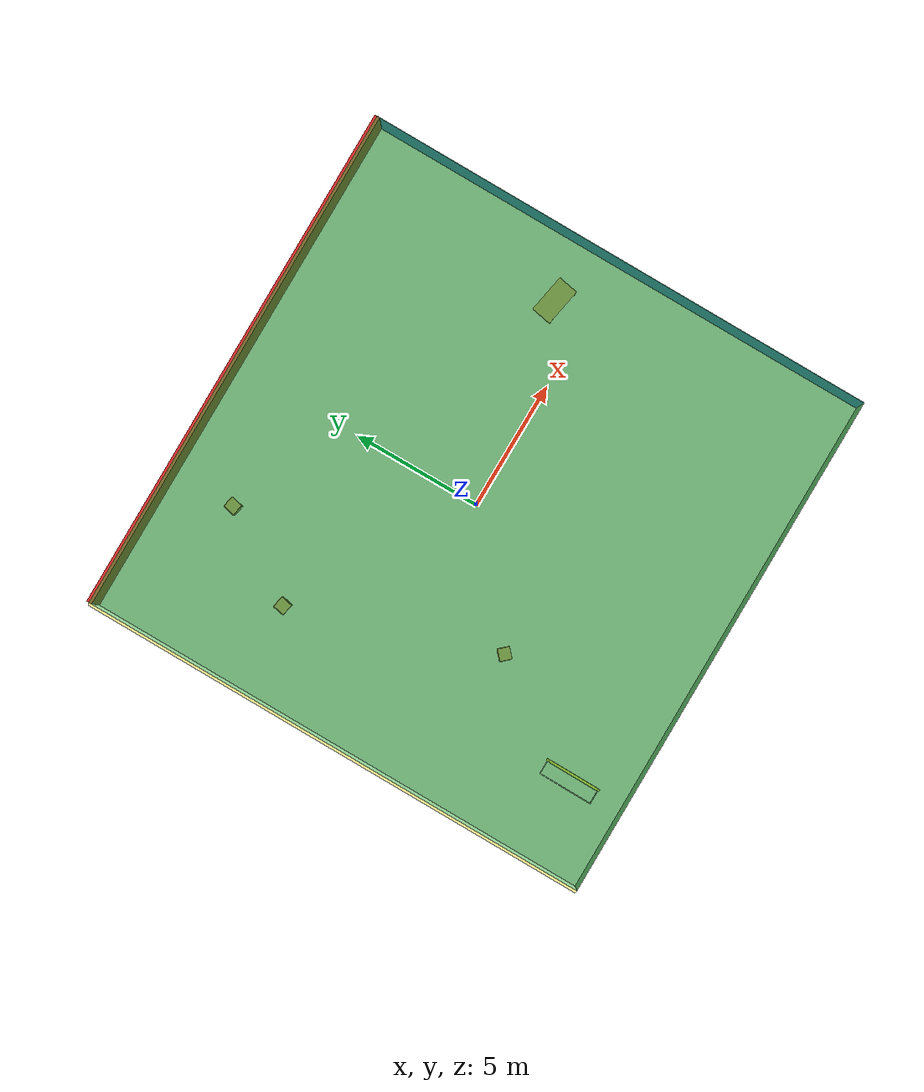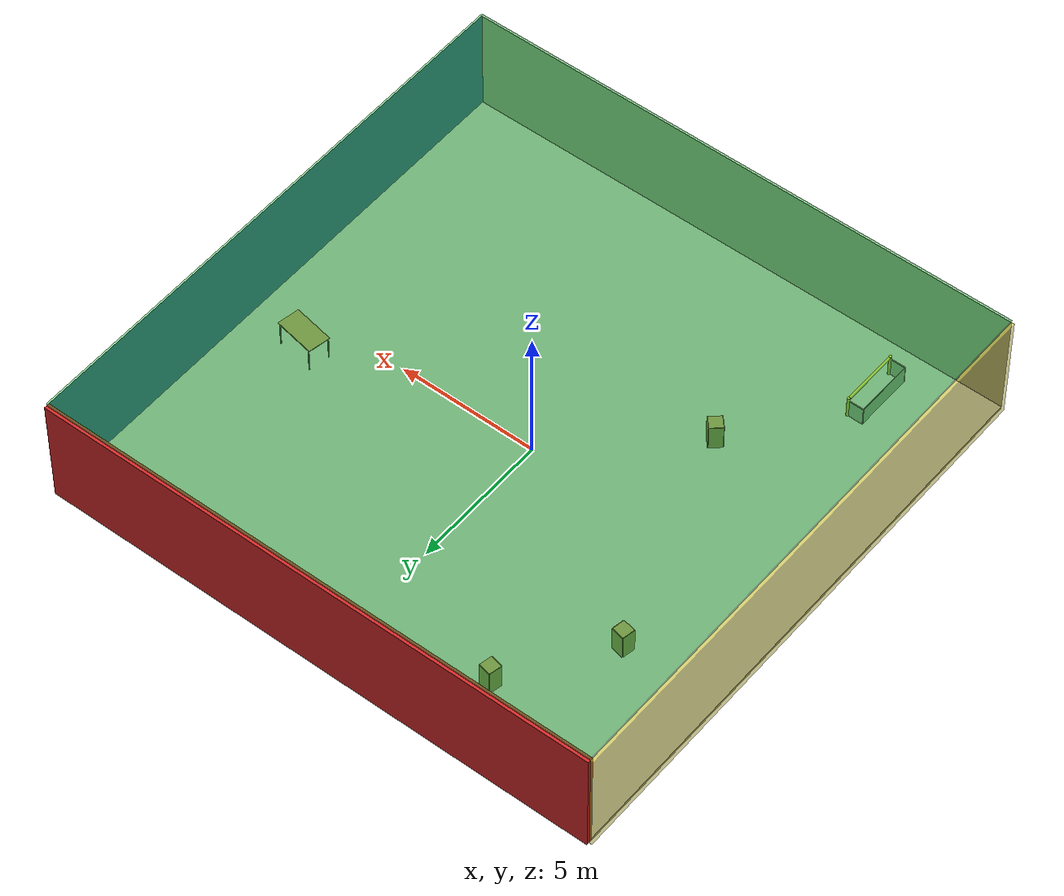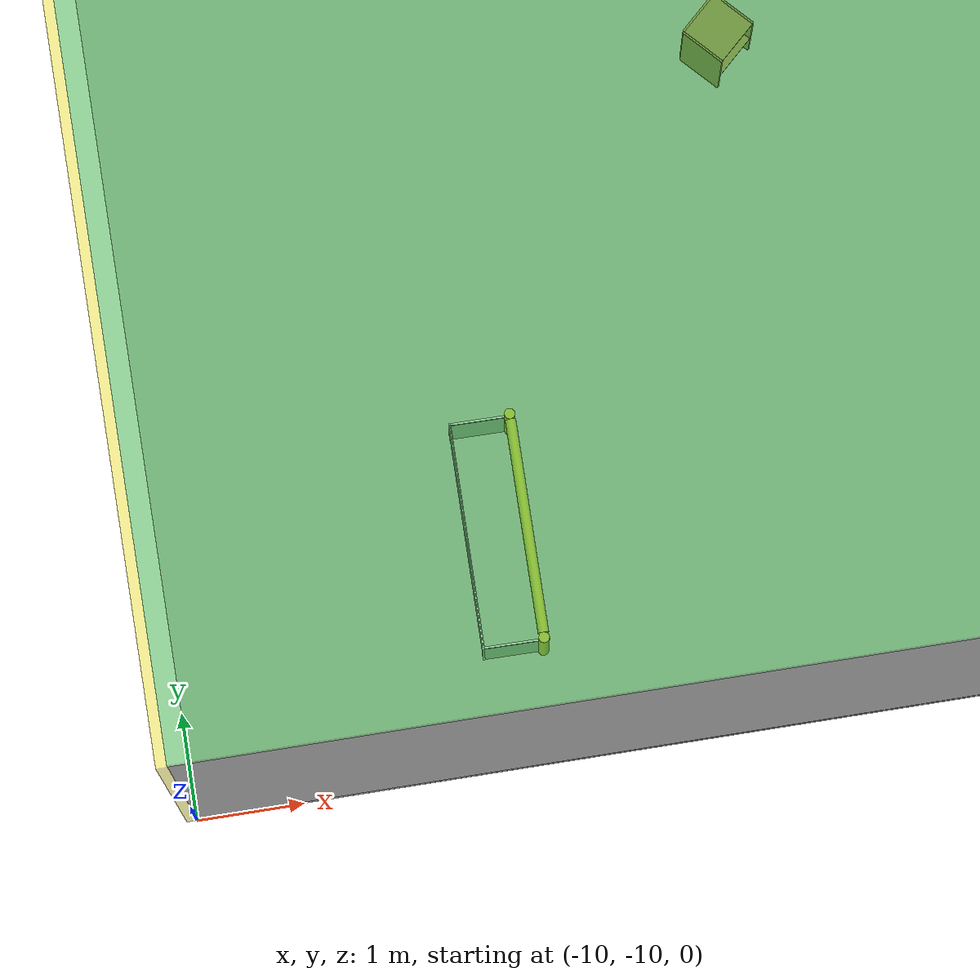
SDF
<sdf version="1.4">
 <world name="default">
  <physics type="ode">
   <max_step_size>0.001</max_step_size>
   <real_time_factor>1</real_time_factor>
   <real_time_update_rate>1000</real_time_update_rate>
   <gravity>0 0 -9.8</gravity>
  </physics>
  <scene><ambient>0.4 0.4 0.4 1</ambient><background>0.7 0.7 0.7 1</background><shadows>1</shadows></scene>
  <model name="Surrounding">
   <static>1</static>
   <link name="Ceiling">
    <collision name="Ceiling_Collision"><geometry><box><size>20 20 0.1</size></box></geometry></collision>
    <visual name="Ceiling_Visual">
     <geometry><box><size>20 20 0.1</size></box></geometry>
     <material>
      <script><uri>file://media/materials/scripts/gazebo.material</uri><name>Gazebo/GreenTransparent</name></script>
     </material>
    </visual>
    <pose>0 0 4.05 0 0 0</pose>
   </link>
   <link name="Wall_South">
    <collision name="Wall_South_Collision">
     <geometry><box><size>20 0 4</size></box></geometry>
     <pose>0 0 2 0 -0 0</pose>
    </collision>
    <visual name="Wall_South_Visual">
     <pose>0 0 2 0 -0 0</pose>
     <geometry><box><size>20 0 4</size></box></geometry>
     <material>
      <script><uri>file://media/materials/scripts/gazebo.material</uri><name>Gazebo/LightOff</name></script>
     </material>
    </visual>
    <velocity_decay><linear>0</linear><angular>0</angular></velocity_decay>
    <pose>0 -10 0 0 -0 0</pose>
   </link>
   <link name="Wall_East">
    <collision name="Wall_21_Collision">
     <geometry><box><size>20 0 4</size></box></geometry>
     <pose>0 0 2 0 -0 0</pose>
    </collision>
    <visual name="Wall_21_Visual">
     <pose>0 0 2 0 -0 0</pose>
     <geometry><box><size>20 0 4</size></box></geometry>
     <material>
      <script><uri>file://media/materials/scripts/gazebo.material</uri><name>Gazebo/BlueGlow</name></script>
     </material>
    </visual>
    <velocity_decay><linear>0</linear><angular>0</angular></velocity_decay>
    <pose>10 0 0 0 -0 1.5708</pose>
   </link>
   <link name="Wall_North">
    <collision name="Wall_22_Collision">
     <geometry><box><size>20 0.2 4</size></box></geometry>
     <pose>0 0 2 0 -0 0</pose>
    </collision>
    <visual name="Wall_22_Visual">
     <pose>0 0 2 0 -0 0</pose>
     <geometry><box><size>20 0.2 4</size></box></geometry>
     <material>
      <script><uri>file://media/materials/scripts/gazebo.material</uri><name>Gazebo/RedGlow</name></script>
     </material>
    </visual>
    <velocity_decay><linear>0</linear><angular>0</angular></velocity_decay>
    <pose>0 10 0 0 -0 0</pose>
   </link>
   <link name="Wall_West">
    <collision name="Wall_23_Collision">
     <geometry><box><size>20 0.2 4</size></box></geometry>
     <pose>0 0 2 0 -0 0</pose>
    </collision>
    <visual name="Wall_23_Visual">
     <pose>0 0 2 0 -0 0</pose>
     <geometry><box><size>20 0.2 4</size></box></geometry>
     <material>
      <script>
       <uri>file://media/materials/scripts/gazebo.material</uri>
       <name>Gazebo/YellowTransparent</name>
      </script>
     </material>
    </visual>
    <velocity_decay><linear>0</linear><angular>0</angular></velocity_decay>
    <pose>-10 0 0 0 0 -1.5708</pose>
   </link>
   <link name="Ground_link">
    <collision name="collision">
     <pose>0 0 .05 0 -0 0</pose>
     <geometry><box><size>20 20 0.1</size></box></geometry>
    </collision>
    <visual name="visual">
     <pose>0 0 .05 0 -0 0</pose>
     <geometry><box><size>20 20 0.1</size></box></geometry>
     <material>
      <script><uri>file://media/materials/scripts/gazebo.material</uri><name>Gazebo/JointAnchor</name></script>
     </material>
    </visual>
   </link>
   <static>1</static>
  </model>
  <spherical_coordinates>
   <surface_model>EARTH_WGS84</surface_model>
   <latitude_deg>0</latitude_deg>
   <longitude_deg>0</longitude_deg>
   <elevation>0</elevation>
   <heading_deg>0</heading_deg>
  </spherical_coordinates>
  <light name="lightball_0" type="diffuse">
   <diffuse>0.8 0.8 0.8 1</diffuse>
   <specular>0.2 0.2 0.2 1</specular>
   <attenuation>
    <range>100</range>
    <constant>0.7</constant>
    <linear>0.01</linear>
    <quadratic>0.001</quadratic>
   </attenuation>
   <direction>-0.5 0.1 -0.9</direction>
   <pose>5.17617791095 -6.93619181939 0.793651196974 0 0 0</pose>
  </light>
  <light name="lightball_1" type="diffuse">
   <diffuse>0.8 0.8 0.8 1</diffuse>
   <specular>0.2 0.2 0.2 1</specular>
   <attenuation>
    <range>100</range>
    <constant>0.7</constant>
    <linear>0.01</linear>
    <quadratic>0.001</quadratic>
   </attenuation>
   <direction>-0.5 0.1 -0.9</direction>
   <pose>-4.45179036248 2.62113779477 0.774247326502 0 0 0</pose>
  </light>
  <light name="lightball_2" type="diffuse">
   <diffuse>0.8 0.8 0.8 1</diffuse>
   <specular>0.2 0.2 0.2 1</specular>
   <attenuation>
    <range>100</range>
    <constant>0.7</constant>
    <linear>0.01</linear>
    <quadratic>0.001</quadratic>
   </attenuation>
   <direction>-0.5 0.1 -0.9</direction>
   <pose>9.10546112878 6.21309038524 0.767418812856 0 0 0</pose>
  </light>
  <light name="lightball_3" type="diffuse">
   <diffuse>0.8 0.8 0.8 1</diffuse>
   <specular>0.2 0.2 0.2 1</specular>
   <attenuation>
    <range>100</range>
    <constant>0.7</constant>
    <linear>0.01</linear>
    <quadratic>0.001</quadratic>
   </attenuation>
   <direction>-0.5 0.1 -0.9</direction>
   <pose>-7.24639601656 -7.91137373768 1.75835278717 0 0 0</pose>
  </light>
  <light name="lightball_4" type="diffuse">
   <diffuse>0.8 0.8 0.8 1</diffuse>
   <specular>0.2 0.2 0.2 1</specular>
   <attenuation>
    <range>100</range>
    <constant>0.7</constant>
    <linear>0.01</linear>
    <quadratic>0.001</quadratic>
   </attenuation>
   <direction>-0.5 0.1 -0.9</direction>
   <pose>-1.11663081259 0.00243790609188 1.84205825969 0 0 0</pose>
  </light>
  <light name="lightball_5" type="diffuse">
   <diffuse>0.8 0.8 0.8 1</diffuse>
   <specular>0.2 0.2 0.2 1</specular>
   <attenuation>
    <range>100</range>
    <constant>0.7</constant>
    <linear>0.01</linear>
    <quadratic>0.001</quadratic>
   </attenuation>
   <direction>-0.5 0.1 -0.9</direction>
   <pose>-7.17562618128 4.31041708265 1.36757704372 0 0 0</pose>
  </light>
  <light name="lightball_6" type="diffuse">
   <diffuse>0.8 0.8 0.8 1</diffuse>
   <specular>0.2 0.2 0.2 1</specular>
   <attenuation>
    <range>100</range>
    <constant>0.7</constant>
    <linear>0.01</linear>
    <quadratic>0.001</quadratic>
   </attenuation>
   <direction>-0.5 0.1 -0.9</direction>
   <pose>-8.41613261339 9.21897366245 3.30381353978 0 0 0</pose>
  </light>
  <include>
   <uri>model://robocup_3Dsim_goal</uri>
   <pose>-6.59021188078 -7.90393816834 0 0 0 3.13311189267</pose>
  </include>
  <include><uri>model://cabinet</uri><pose>-6.65370236439 4.1634456734 0 0 0 1.38143647098</pose></include>
  <include><uri>model://cabinet</uri><pose>-4.09088843977 -3.57383204766 0 0 0 2.31740319915</pose></include>
  <include><uri>model://cabinet</uri><pose>-4.47160387176 7.53340392112 0 0 0 2.92641087231</pose></include>
  <include><uri>model://table</uri><pose>7.76186656754 1.33463483578 0 0 0 2.95830421072</pose></include>
 </world>
</sdf>

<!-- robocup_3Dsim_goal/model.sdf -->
<sdf version="1.5">
  <model name="robocup_3d_goal">
    <static>true</static>
    <link name="left_post">
      <pose>0 1.05 0.45 0 0 0</pose>
      <collision name="collision">
        <geometry>
          <cylinder>
            <radius>0.05</radius>
            <length>0.9</length>
          </cylinder>
        </geometry>
      </collision>
      <visual name="visual">
        <geometry>
          <cylinder>
            <radius>0.05</radius>
            <length>0.9</length>
          </cylinder>
        </geometry>
        <material>
          <script>
            <uri>file://media/materials/scripts/gazebo.material</uri>
            <name>Gazebo/ZincYellow</name>
          </script>
        </material>
      </visual>
    </link>
    <link name="left_support_horiz_lower">
      <pose>0.30 1.05 0.01 0 0 0</pose>
      <collision name="collision">
        <geometry>
          <box>
            <size>0.50 0.02 0.02</size>
          </box>
        </geometry>
      </collision>
      <visual name="visual">
        <geometry>
          <box>
            <size>0.50 0.02 0.02</size>
          </box>
        </geometry>
        <material>
          <script>
            <uri>file://media/materials/scripts/gazebo.material</uri>
            <name>Gazebo/White</name>
          </script>
        </material>
      </visual>
    </link>
    <link name="left_support_horiz_upper">
      <pose>0.30 1.05 0.79 0 0 0</pose>
      <collision name="collision">
        <geometry>
          <box>
            <size>0.50 0.02 0.02</size>
          </box>
        </geometry>
      </collision>
      <visual name="visual">
        <geometry>
          <box>
            <size>0.50 0.02 0.02</size>
          </box>
        </geometry>
        <material>
          <script>
            <uri>file://media/materials/scripts/gazebo.material</uri>
            <name>Gazebo/White</name>
          </script>
        </material>
      </visual>
    </link>
    <link name="left_support_vertical">
      <pose>0.56 1.05 0.4 0 1.5708 0</pose>
      <collision name="collision">
        <geometry>
          <box>
            <size>0.80 0.02 0.02</size>
          </box>
        </geometry>
      </collision>
      <visual name="visual">
        <geometry>
          <box>
            <size>0.80 0.02 0.02</size>
          </box>
        </geometry>
        <material>
          <script>
            <uri>file://media/materials/scripts/gazebo.material</uri>
            <name>Gazebo/White</name>
          </script>
        </material>
      </visual>
    </link>
    <link name="right_support_horiz_lower">
      <pose>0.30 -1.05 0.01 0 0 0</pose>
      <collision name="collision">
        <geometry>
          <box>
            <size>0.50 0.02 0.02</size>
          </box>
        </geometry>
      </collision>
      <visual name="visual">
        <geometry>
          <box>
            <size>0.50 0.02 0.02</size>
          </box>
        </geometry>
        <material>
          <script>
            <uri>file://media/materials/scripts/gazebo.material</uri>
            <name>Gazebo/White</name>
          </script>
        </material>
      </visual>
    </link>
    <link name="right_support_horiz_upper">
      <pose>0.30 -1.05 0.79 0 0 0</pose>
      <collision name="collision">
        <geometry>
          <box>
            <size>0.50 0.02 0.02</size>
          </box>
        </geometry>
      </collision>
      <visual name="visual">
        <geometry>
          <box>
            <size>0.50 0.02 0.02</size>
          </box>
        </geometry>
        <material>
          <script>
            <uri>file://media/materials/scripts/gazebo.material</uri>
            <name>Gazebo/White</name>
          </script>
        </material>
      </visual>
    </link>
    <link name="right_support_vertical">
      <pose>0.56 -1.05 0.4 0 1.5708 0</pose>
      <collision name="collision">
        <geometry>
          <box>
            <size>0.80 0.02 0.02</size>
          </box>
        </geometry>
      </collision>
      <visual name="visual">
        <geometry>
          <box>
            <size>0.80 0.02 0.02</size>
          </box>
        </geometry>
        <material>
          <script>
            <uri>file://media/materials/scripts/gazebo.material</uri>
            <name>Gazebo/White</name>
          </script>
        </material>
      </visual>
    </link>
    <link name="center_support_horiz_lower">
      <pose>0.56 0 0.01 0 1.5708 0</pose>
      <collision name="collision">
        <geometry>
          <box>
            <size>0.02 2.08 0.02</size>
          </box>
        </geometry>
      </collision>
      <visual name="visual">
        <geometry>
          <box>
            <size>0.02 2.08 0.02</size>
          </box>
        </geometry>
        <material>
          <script>
            <uri>file://media/materials/scripts/gazebo.material</uri>
            <name>Gazebo/White</name>
          </script>
        </material>
      </visual>
    </link>
    <link name="center_support_horiz_upper">
      <pose>0.56 0 0.79 0 1.5708 0</pose>
      <collision name="collision">
        <geometry>
          <box>
            <size>0.02 2.08 0.02</size>
          </box>
        </geometry>
      </collision>
      <visual name="visual">
        <geometry>
          <box>
            <size>0.02 2.08 0.02</size>
          </box>
        </geometry>
        <material>
          <script>
            <uri>file://media/materials/scripts/gazebo.material</uri>
            <name>Gazebo/White</name>
          </script>
        </material>
      </visual>
    </link>
    <link name="right_post">
      <pose>0 -1.05 0.45 0 0 0</pose>
      <collision name="collision">
        <geometry>
          <cylinder>
            <radius>0.05</radius>
            <length>0.9</length>
          </cylinder>
        </geometry>
      </collision>
      <visual name="visual">
        <geometry>
          <cylinder>
            <radius>0.05</radius>
            <length>0.9</length>
          </cylinder>
        </geometry>
        <material>
          <script>
            <uri>file://media/materials/scripts/gazebo.material</uri>
            <name>Gazebo/ZincYellow</name>
          </script>
        </material>
      </visual>
    </link>
    <link name="crossbar">
      <pose>0 0 0.85 1.57 1.57 0</pose>
      <collision name="collision">
        <geometry>
          <cylinder>
            <radius>0.05</radius>
            <length>2.0</length>
          </cylinder>
        </geometry>
      </collision>
      <visual name="visual">
        <geometry>
          <cylinder>
            <radius>0.05</radius>
            <length>2.0</length>
          </cylinder>
        </geometry>
        <material>
          <script>
            <uri>file://media/materials/scripts/gazebo.material</uri>
            <name>Gazebo/ZincYellow</name>
          </script>
        </material>
      </visual>
    </link>
    <link name="center_net">
      <pose>0.56 0 0.40 0 0 0</pose>
      <collision name="collision">
        <geometry>
          <box>
            <size>0.01 2.1 0.80</size>
          </box>
        </geometry>
      </collision>
      <visual name="visual">
        <geometry>
          <box>
            <size>0.01 2.1 0.80</size>
          </box>
        </geometry>
        <material>
          <script>
            <uri>model://../model_source/models/robocup09_spl_field/materials/scripts/</uri>
            <uri>model://../model_source/models/robocup09_spl_field/materials/textures/</uri>
            <name>RoboCup/Net</name>
          </script>
        </material>
      </visual>
    </link>
    <link name="left_net">
      <pose>0.30 1.05 0.40 0 0 0</pose>
      <collision name="collision">
        <geometry>
          <box>
            <size>0.50 0.01 0.76</size>
          </box>
        </geometry>
      </collision>
      <visual name="visual">
        <geometry>
          <box>
            <size>0.50 0.01 0.76</size>
          </box>
        </geometry>
        <material>
          <script>
            <uri>model://../model_source/models/robocup09_spl_field/materials/scripts/</uri>
            <uri>model://../model_source/models/robocup09_spl_field/materials/textures/</uri>
            <name>RoboCup/Net</name>
          </script>
        </material>
      </visual>
    </link>
    <link name="right_net">
      <pose>0.30 -1.05 0.40 0 0 0</pose>
      <collision name="collision">
        <geometry>
          <box>
            <size>0.50 0.01 0.76</size>
          </box>
        </geometry>
      </collision>
      <visual name="visual">
        <geometry>
          <box>
            <size>0.50 0.01 0.76</size>
          </box>
        </geometry>
        <material>
          <script>
            <uri>model://../model_source/models/robocup09_spl_field/materials/scripts/</uri>
            <uri>model://../model_source/models/robocup09_spl_field/materials/textures/</uri>
            <name>RoboCup/Net</name>
          </script>
        </material>
      </visual>
    </link>
  </model>
</sdf>

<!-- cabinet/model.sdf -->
<sdf version="1.5">
  <model name="cabinet">
    <static>true</static>
    <link name="cabinet_bottom_plate">
      <inertial>
        <pose>0 0 -1 0 0 0</pose>
        <inertia>
          <ixx>2.050000</ixx>
          <ixy>0</ixy>
          <ixz>0</ixz>
          <iyy>2.050000</iyy>
          <iyz>0</iyz>
          <izz>2.050000</izz>
        </inertia>
        <mass>25.000000</mass>
      </inertial>
      <collision name="cabinet_bottom_plate_geom">
        <pose>0 0 0.010000 0 0 0</pose>
        <geometry>
          <box>
            <size>0.450000 0.450000 0.020000</size>
          </box>
        </geometry>
      </collision>
      <visual name="cabinet_bottom_plate_geom_visual">
        <pose>0 0 0.010000 0 0 0</pose>
        <geometry>
          <box>
            <size>0.450000 0.450000 0.020000</size>
          </box>
        </geometry>
        <material>
          <script>
            <uri>model://media/materials/scripts/gazebo.material</uri>
            <name>Gazebo/Wood</name>
          </script>
        </material>
      </visual>
      <collision name="cabinet_bottom_plate_geom_cabinet_back_plate">
        <pose>0.235000 0 0.510000 0 0 0</pose>
        <geometry>
          <box>
            <size>0.020000 0.450000 1.020000</size>
          </box>
        </geometry>
      </collision>
      <visual name="cabinet_bottom_plate_geom_cabinet_back_plate_visual">
        <pose>0.235000 0 0.510000 0 0 0</pose>
        <geometry>
          <box>
            <size>0.020000 0.450000 1.020000</size>
          </box>
        </geometry>
        <material>
          <script>
            <uri>model://media/materials/scripts/gazebo.material</uri>
            <name>Gazebo/Wood</name>
          </script>
        </material>
      </visual>
      <collision name="cabinet_bottom_plate_geom_cabinet_left_plate">
        <pose>0 0.235000 0.510000 0 0 0</pose>
        <geometry>
          <box>
            <size>0.450000 0.020000 1.020000</size>
          </box>
        </geometry>
      </collision>
      <visual name="cabinet_bottom_plate_geom_cabinet_left_plate_visual">
        <pose>0 0.235000 0.510000 0 0 0</pose>
        <geometry>
          <box>
            <size>0.450000 0.020000 1.020000</size>
          </box>
        </geometry>
        <material>
          <script>
            <uri>model://media/materials/scripts/gazebo.material</uri>
            <name>Gazebo/Wood</name>
          </script>
        </material>
      </visual>
      <collision name="cabinet_bottom_plate_geom_cabinet_middle_plate">
        <pose>0 0 0.510000 0 0 0</pose>
        <geometry>
          <box>
            <size>0.450000 0.450000 0.020000</size>
          </box>
        </geometry>
      </collision>
      <visual name="cabinet_bottom_plate_geom_cabinet_middle_plate_visual">
        <pose>0 0 0.510000 0 0 0</pose>
        <geometry>
          <box>
            <size>0.450000 0.450000 0.020000</size>
          </box>
        </geometry>
        <material>
          <script>
            <uri>model://media/materials/scripts/gazebo.material</uri>
            <name>Gazebo/Wood</name>
          </script>
        </material>
      </visual>
      <collision name="cabinet_bottom_plate_geom_cabinet_right_plate">
        <pose>0 -0.235000 0.510000 0 0 0</pose>
        <geometry>
          <box>
            <size>0.450000 0.020000 1.020000</size>
          </box>
        </geometry>
      </collision>
      <visual name="cabinet_bottom_plate_geom_cabinet_right_plate_visual">
        <pose>0 -0.235000 0.510000 0 0 0</pose>
        <geometry>
          <box>
            <size>0.450000 0.020000 1.020000</size>
          </box>
        </geometry>
        <material>
          <script>
            <uri>model://media/materials/scripts/gazebo.material</uri>
            <name>Gazebo/Wood</name>
          </script>
        </material>
      </visual>
      <collision name="cabinet_bottom_plate_geom_cabinet_top_plate">
        <pose>0 0 1.010000 0 0 0</pose>
        <geometry>
          <box>
            <size>0.450000 0.450000 0.020000</size>
          </box>
        </geometry>
      </collision>
      <visual name="cabinet_bottom_plate_geom_cabinet_top_plate_visual">
        <pose>0 0 1.010000 0 0 0</pose>
        <geometry>
          <box>
            <size>0.450000 0.450000 0.020000</size>
          </box>
        </geometry>
        <material>
          <script>
            <uri>model://media/materials/scripts/gazebo.material</uri>
            <name>Gazebo/Wood</name>
          </script>
        </material>
      </visual>
    </link>
  </model>
</sdf>

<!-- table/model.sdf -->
<sdf version="1.5">
  <model name="table">
    <static>true</static>
    <link name="link">
      <collision name="surface">
        <pose>0 0 1.0 0 0 0</pose>
        <geometry>
          <box>
            <size>1.5 0.8 0.03</size>
          </box>
        </geometry>
        <surface>
          <friction>
            <ode>
              <mu>0.6</mu>
              <mu2>0.6</mu2>
            </ode>
          </friction>
        </surface>
      </collision>
      <visual name="visual1">
        <pose>0 0 1.0 0 0 0</pose>
        <geometry>
          <box>
            <size>1.5 0.8 0.03</size>
          </box>
        </geometry>
        <material>
          <script>
            <uri>model://media/materials/scripts/gazebo.material</uri>
            <name>Gazebo/Wood</name>
          </script>
        </material>
      </visual>
      <collision name="front_left_leg">
        <pose>0.68 0.38 0.5 0 0 0</pose>
        <geometry>
          <cylinder>
            <radius>0.02</radius>
            <length>1.0</length>
          </cylinder>
        </geometry>
      </collision>
      <visual name="front_left_leg">
        <pose>0.68 0.38 0.5 0 0 0</pose>
        <geometry>
          <cylinder>
            <radius>0.02</radius>
            <length>1.0</length>
          </cylinder>
        </geometry>
        <material>
          <script>
            <uri>model://media/materials/scripts/gazebo.material</uri>
            <name>Gazebo/Grey</name>
          </script>
        </material>
      </visual>
      <collision name="front_right_leg">
        <pose>0.68 -0.38 0.5 0 0 0</pose>
        <geometry>
          <cylinder>
            <radius>0.02</radius>
            <length>1.0</length>
          </cylinder>
        </geometry>
      </collision>
      <visual name="front_right_leg">
        <pose>0.68 -0.38 0.5 0 0 0</pose>
        <geometry>
          <cylinder>
            <radius>0.02</radius>
            <length>1.0</length>
          </cylinder>
        </geometry>
        <material>
          <script>
            <uri>model://media/materials/scripts/gazebo.material</uri>
            <name>Gazebo/Grey</name>
          </script>
        </material>
      </visual>
      <collision name="back_right_leg">
        <pose>-0.68 -0.38 0.5 0 0 0</pose>
        <geometry>
          <cylinder>
            <radius>0.02</radius>
            <length>1.0</length>
          </cylinder>
        </geometry>
      </collision>
      <visual name="back_right_leg">
        <pose>-0.68 -0.38 0.5 0 0 0</pose>
        <geometry>
          <cylinder>
            <radius>0.02</radius>
            <length>1.0</length>
          </cylinder>
        </geometry>
        <material>
          <script>
            <uri>model://media/materials/scripts/gazebo.material</uri>
            <name>Gazebo/Grey</name>
          </script>
        </material>
      </visual>
      <collision name="back_left_leg">
        <pose>-0.68 0.38 0.5 0 0 0</pose>
        <geometry>
          <cylinder>
            <radius>0.02</radius>
            <length>1.0</length>
          </cylinder>
        </geometry>
      </collision>
      <visual name="back_left_leg">
        <pose>-0.68 0.38 0.5 0 0 0</pose>
        <geometry>
          <cylinder>
            <radius>0.02</radius>
            <length>1.0</length>
          </cylinder>
        </geometry>
        <material>
          <script>
            <uri>model://media/materials/scripts/gazebo.material</uri>
            <name>Gazebo/Grey</name>
          </script>
        </material>
      </visual>
    </link>
  </model>
</sdf>
